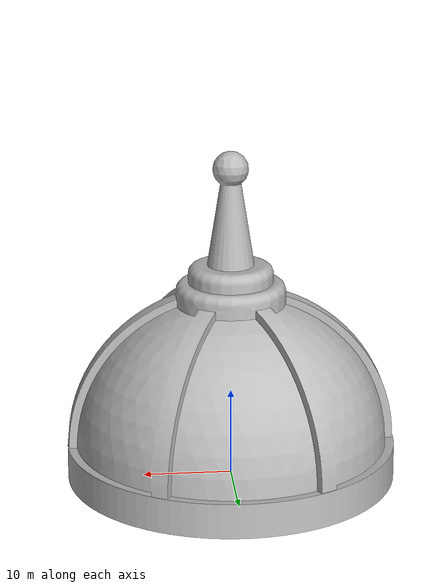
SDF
<?xml version='1.0'?>
<sdf version='1.4'>
  <model name="cupula">
	<static>true</static>
	<pose>0 0 0 0 0 0</pose>

          <link name='chassis'>
            <pose>0 0 0 0 0 0</pose>

            <collision name='collision'>
              <geometry>
                <mesh>
                  <uri>model://cupula/meshes/Cupula.stl</uri>
                  <scale>1 1 1</scale>
                </mesh>
              </geometry>
            </collision>

            <visual name='visual'>
              <geometry>
                <mesh>
                  <uri>model://cupula/meshes/Cupula.stl</uri>
                  <scale>1 1 1</scale>
                </mesh>
              </geometry>

            </visual>
          </link>

  </model>
</sdf>
